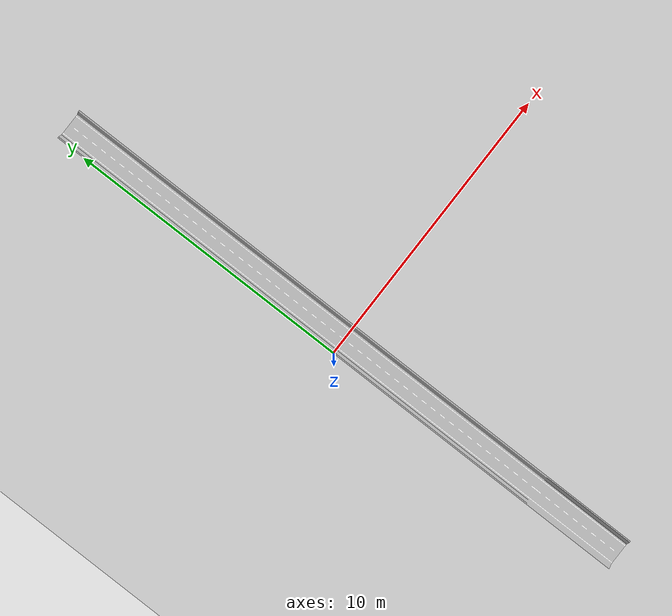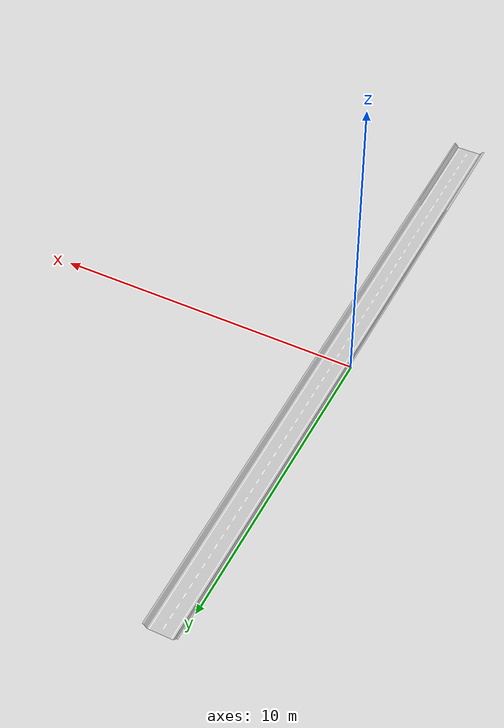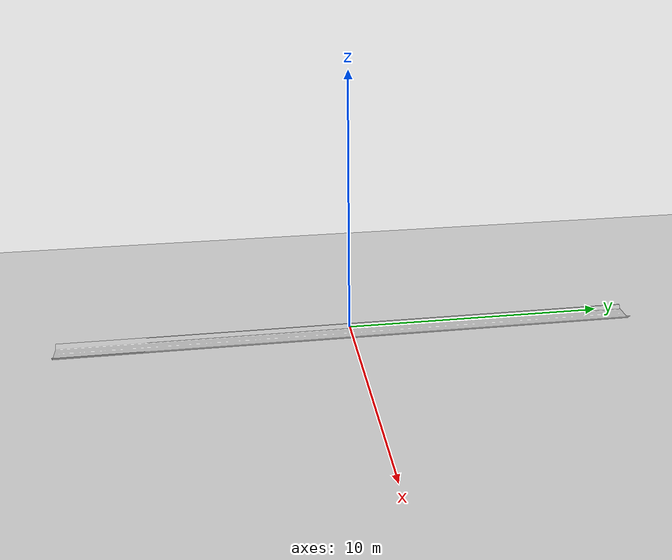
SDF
<?xml version="1.0" encoding="UTF-8"?>
<sdf version='1.4'>
  <world name='default'>
    <include>
      <uri>model://ground_plane</uri>
    </include>

    <!-- Global light source -->
    <include>
      <uri>model://sun</uri>
    </include>

    <include>
        <uri>model://autonomos_gazebo/models/circuit2way_straight</uri>
        <pose>0 -11 0.006 0 0 0</pose>
    </include>

    <gui fullscreen='0'>
      <camera name='user_camera'>
        <pose>0.331993 -14.4647 1.75972 0 0.331643 1.1722</pose>
        <view_controller>orbit</view_controller>
      </camera>
    </gui>
  </world>
</sdf>

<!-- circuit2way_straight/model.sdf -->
<sdf version="1.5">
  <model name="asphalt_plane">
    <static>true</static>
    <link name="link">
       <collision name='collision'>
          <geometry>
            <plane>
              <normal>0 0 1</normal>
              <size>44 10</size>
            </plane>
          </geometry>
          <surface>
            <friction>
              <ode>
                <mu>100</mu>
                <mu2>50</mu2>
              </ode>
            </friction>
            <bounce/>
            <contact>
              <ode/>
            </contact>
          </surface>
          <max_contacts>10</max_contacts>
        </collision>
      <visual name="visual">
        <geometry>
          <mesh>
            <uri>model://circuit2way_straight/meshes/circuit_straight.dae</uri>
         </mesh>
        </geometry>
      </visual>
      <velocity_decay>
          <linear>0</linear>
          <angular>0</angular>
      </velocity_decay>
      <self_collide>0</self_collide>
      <kinematic>0</kinematic>
      <gravity>1</gravity>
    </link>
  </model>
</sdf>
